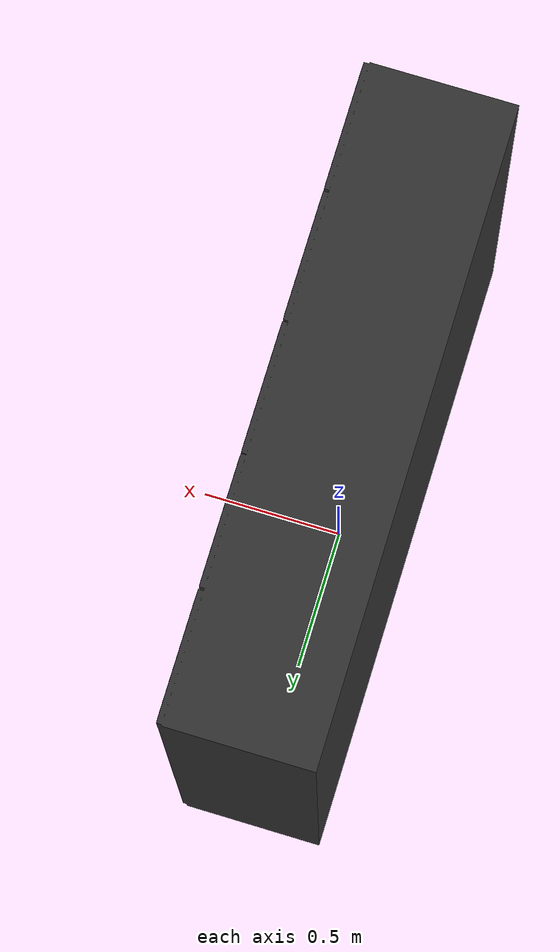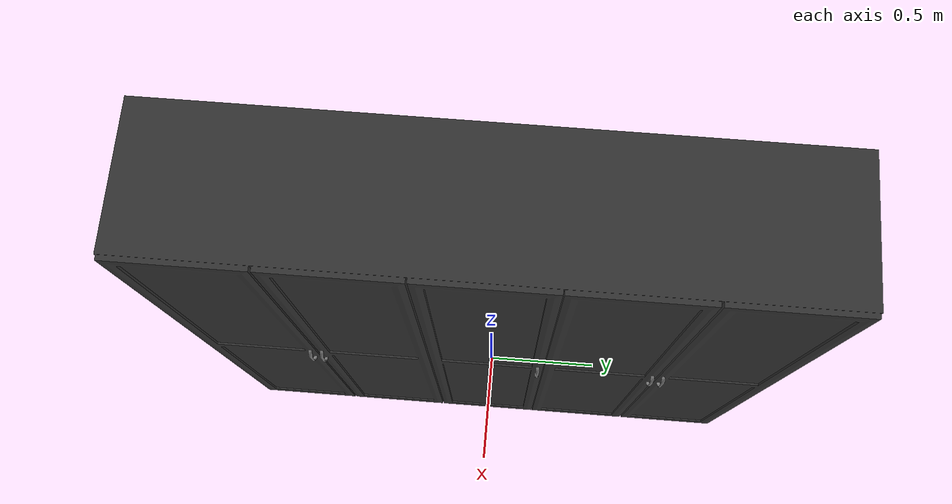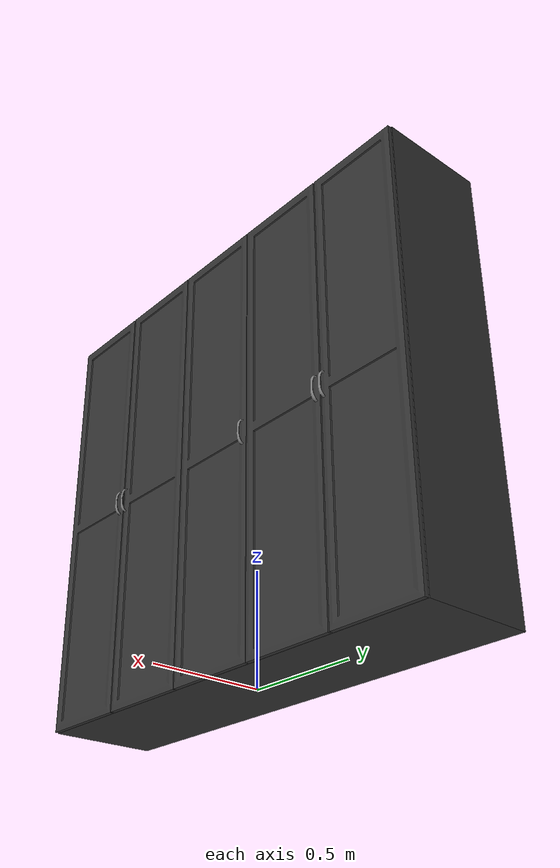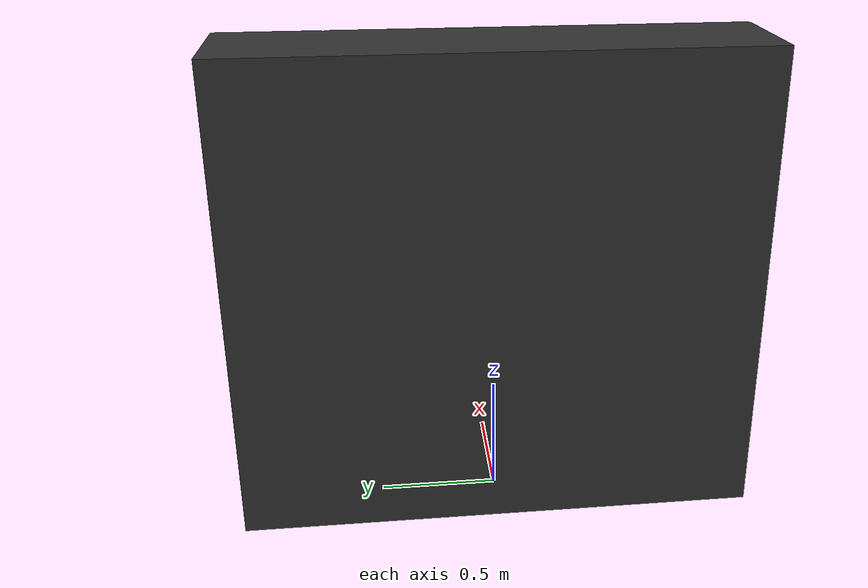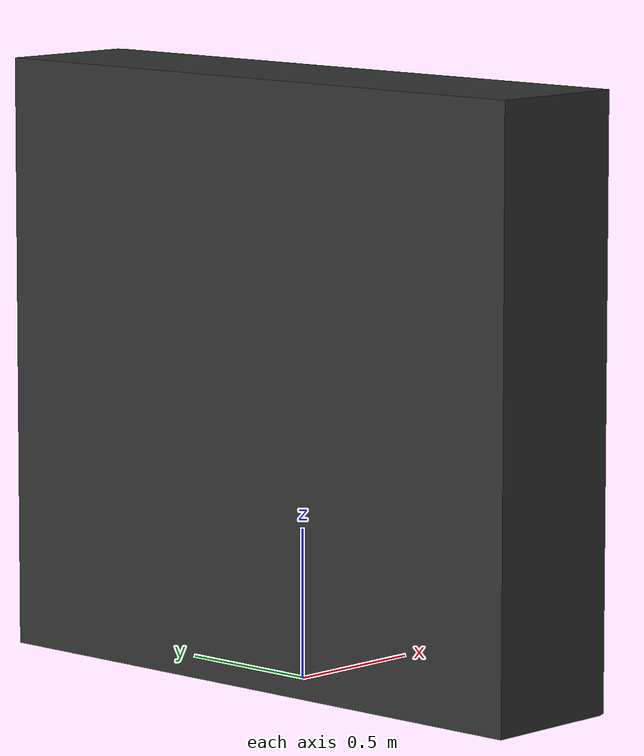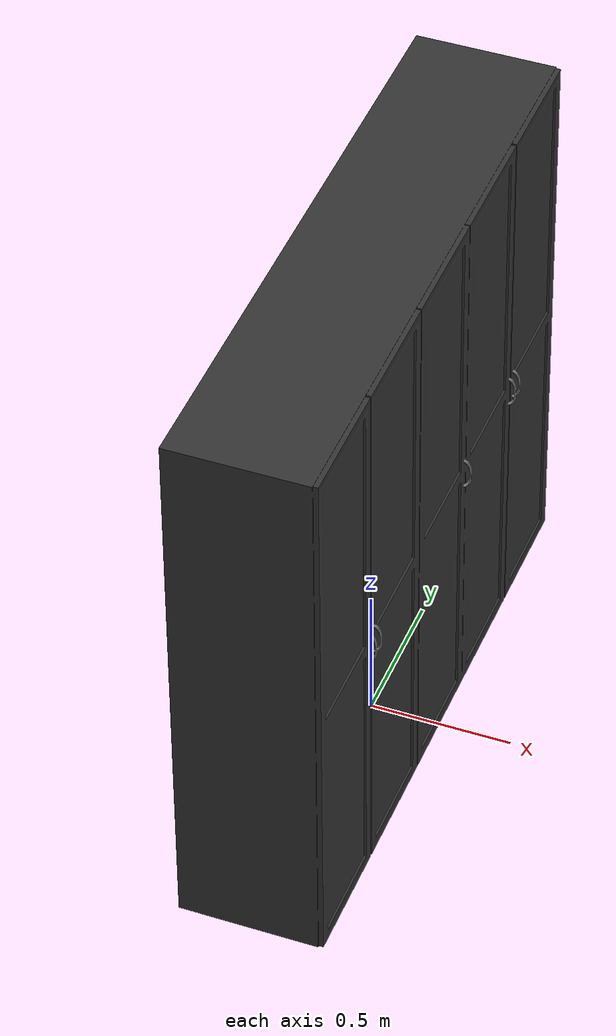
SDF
<?xml version="1.0" ?>
<sdf version="1.0">
  <model name="wardrobe">
    <static>true</static>
    <link name="wardrobe">
      <collision name="wardrobe">
        <pose>0 0 1.0 0 0 0</pose>
        <geometry>
          <box>
            <size>0.5300 2.1740 2.0000</size>
          </box>
        </geometry>
      </collision>

      <visual name="wardrobe_mesh">
	  <cast_shadows>true</cast_shadows>
        <geometry>
          <mesh>
	        <uri>model://wardrobe/meshes/model.dae</uri>
	      </mesh>
        </geometry>
      </visual>
    </link>
  </model>
</sdf>
